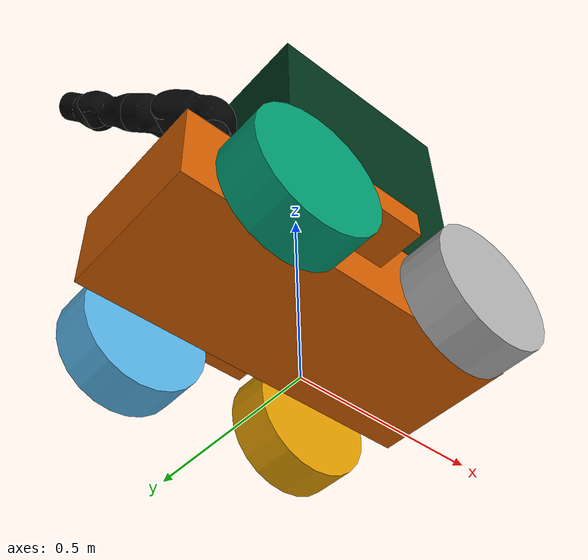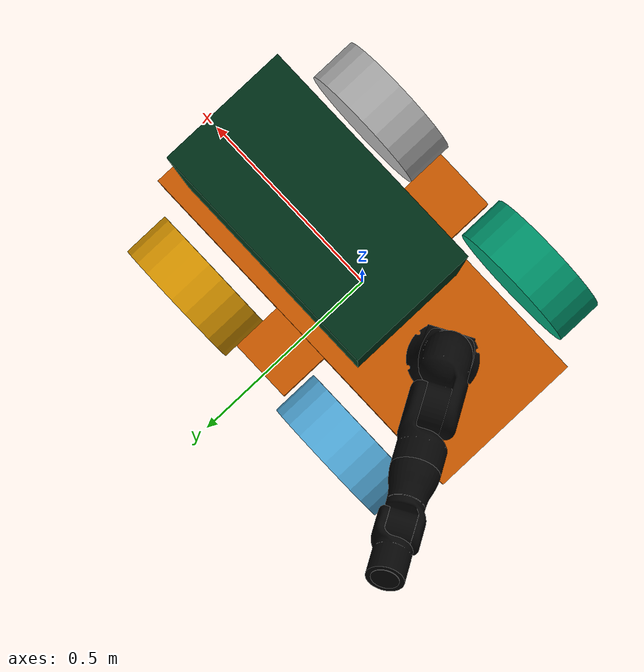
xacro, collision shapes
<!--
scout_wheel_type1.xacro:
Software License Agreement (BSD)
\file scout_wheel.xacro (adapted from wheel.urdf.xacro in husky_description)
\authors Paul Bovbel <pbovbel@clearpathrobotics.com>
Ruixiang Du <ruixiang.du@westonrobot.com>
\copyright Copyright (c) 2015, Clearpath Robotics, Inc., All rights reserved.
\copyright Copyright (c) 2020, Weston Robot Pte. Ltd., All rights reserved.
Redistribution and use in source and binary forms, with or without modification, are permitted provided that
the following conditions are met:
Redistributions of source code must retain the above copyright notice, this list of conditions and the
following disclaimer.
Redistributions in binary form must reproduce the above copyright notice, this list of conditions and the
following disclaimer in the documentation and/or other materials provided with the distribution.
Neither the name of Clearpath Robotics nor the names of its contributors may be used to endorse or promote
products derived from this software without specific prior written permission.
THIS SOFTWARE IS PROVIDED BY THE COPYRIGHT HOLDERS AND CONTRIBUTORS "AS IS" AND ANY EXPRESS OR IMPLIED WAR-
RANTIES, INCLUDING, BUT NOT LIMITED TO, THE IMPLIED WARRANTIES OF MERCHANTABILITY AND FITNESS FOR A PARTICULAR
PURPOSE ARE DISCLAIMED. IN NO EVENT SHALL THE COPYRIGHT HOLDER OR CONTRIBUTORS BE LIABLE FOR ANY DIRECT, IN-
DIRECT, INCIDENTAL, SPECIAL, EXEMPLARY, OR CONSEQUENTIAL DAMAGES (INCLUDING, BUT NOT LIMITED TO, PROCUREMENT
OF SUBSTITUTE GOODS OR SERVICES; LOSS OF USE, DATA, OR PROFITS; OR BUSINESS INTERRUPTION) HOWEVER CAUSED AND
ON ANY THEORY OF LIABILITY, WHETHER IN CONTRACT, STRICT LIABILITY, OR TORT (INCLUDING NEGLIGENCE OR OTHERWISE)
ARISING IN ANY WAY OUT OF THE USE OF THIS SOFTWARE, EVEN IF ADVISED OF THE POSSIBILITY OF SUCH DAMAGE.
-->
<?xml version="1.0"?>
<robot xmlns:xacro="http://www.ros.org/wiki/xacro" name="igus_rebel">

    <!-- Scout base selection -->
    <xacro:arg name="load_base" default="true" />

    <!-- Mount selection -->
    <xacro:arg name="mount" default="none" />

    <!-- Camera type selection -->
    <xacro:arg name="camera" default="none" />

    <!-- End effector type selection -->
    <xacro:arg name="end_effector" default="none" />

    <!-- Gazebo version -->
    <xacro:arg name="load_gazebo" default="false" />

    <!-- Controller settings, only enable a single one in the launch file -->
    <xacro:arg name="hardware_protocol" default="simulation" />

    <!-- Argument that tells if Moveit2 is used or not -->
    <xacro:arg name="moveit" default="false" />

    <!-- odometry source: world ground truth or wheels encoders -->
    <xacro:arg name="odometry_source" default="ground_truth" />

    <!-- Set both at 0.0 if collapsing is not interesting in gazebo -->
    <xacro:property name="damping" value="0.0"/>
    <xacro:property name="friction" value="0.0"/>

    <!-- Load mobile robot base, load_base must be true -->
    <xacro:if value="$(arg load_base)">

        <link name="world" />
        <joint name="world_joint" type="fixed">
            <parent link="world" />
            <child link="base_footprint" />
        </joint>
        <!-- add virtual joints and links to create a complete TF tree supporting both igus rebel
        and mobile robot -->
        <!-- base_footprint -> base_link -> { mobile_robot_base_link, rebel_support ->
        igus_rebel_base_link } -> other links -->

        <!-- virtual joints acting as a link between base_link and igus_rebel_base_link -->
        <joint name="base_link_to_rebel_support" type="fixed">
            <parent link="base_link" />
            <child link="rebel_support" />
            <origin xyz="-0.26 0.0 0.1" rpy="0 0 ${pi}" />
            <dynamics damping="${damping}" friction="${friction}"/>
        </joint>

        <link name="rebel_support" />

        <joint name="rebel_support_to_igus_rebel" type="fixed">
            <parent link="rebel_support" />
            <child link="igus_rebel_base_link" />
            <origin xyz="0.0 0.0 0.0" rpy="0 0 ${-pi/3}" />
            <dynamics damping="${damping}" friction="${friction}"/>
        </joint>

        <!-- castle with tower mounting sensors, batteries, computer and everyhting else, attached
        to mobile_robot_base_link-->
        <xacro:include filename="$(find igus_rebel_description_ros2)/urdf/mobile_robot/castle.xacro" />

        <!-- load scout robot -->
        <xacro:include
            filename="$(find agilex_scout)/urdf/mobile_robot/scout_v2.urdf.xacro" />
        <xacro:scout_v2
            load_gazebo="$(arg load_gazebo)" odometry_source="$(arg odometry_source)" />

    </xacro:if>

    <!-- Add base_link attachment when no mobile robot is loaded -->
    <xacro:unless value="$(arg load_base)">

        <link name="world" />
        <joint name="world_joint" type="fixed">
            <parent link="world" />
            <child link="base_link" />
        </joint>

        <link name="base_link" />

        <joint name="base_link_to_igus_rebel" type="fixed">
            <parent link="base_link" />
            <child link="igus_rebel_base_link" />
            <origin xyz="0.0 0.0 0.0" rpy="0.0 0.0 0.0" />
        </joint>

    </xacro:unless>

    <!-- load igus rebel -->
    <xacro:include
        filename="$(find igus_rebel_description_ros2)/urdf/igus_rebel/igus_rebel.urdf.xacro" />
    <xacro:igus_rebel
            load_base="$(arg load_base)" mount="$(arg mount)" camera="$(arg camera)" end_effector="$(arg end_effector)"
        hardware_protocol="$(arg hardware_protocol)" load_gazebo="$(arg load_gazebo)" moveit="$(arg moveit)" />

</robot>

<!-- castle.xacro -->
<robot name="scout_v2" xmlns:xacro="http://ros.org/wiki/xacro">

	<joint name="tower" type="fixed">
		<parent link="mobile_robot_base_link" />
		<child link="tower_link" />
		<origin rpy="0.0 0.0 0" xyz="0.13 0.0 0.1" />
		<axis xyz="0 0 -1" />
	</joint>

	<link name="tower_link">
		<inertial>
			<mass value="1" />
			<inertia ixx="1" ixy="1" ixz="1" iyy="0" iyz="0" izz="0" />
		</inertial>
		<visual>
			<origin xyz="0.0 0.0 0.33" rpy="0.0 0.0 0.0" />
			<geometry>
				<box size="0.55 0.3 0.69" />
			</geometry>
			<material name="dark_blue">
				<color rgba="0.0 ${51/255} ${25/255} 1.0" />
			</material>
		</visual>
		<collision>
			<origin xyz="0.0 0.0 0.33" rpy="0.0 0.0 0.0" />
			<geometry>
				<box size="0.55 0.3 0.69" />
			</geometry>
		</collision>
	</link>

</robot>

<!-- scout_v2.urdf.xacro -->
<robot name="scout_v2" xmlns:xacro="http://ros.org/wiki/xacro">

	<xacro:macro name="scout_v2" params="odometry_source load_gazebo">

		<!-- Variables -->

		<!-- Collision boxes geometries -->
		<xacro:property name="base_x_size" value="0.9250000" />
		<xacro:property name="base_y_size" value="0.380000" />
		<xacro:property name="base_z_size" value="0.210000" />

		<!-- vehicle geometries -->
		<xacro:property name="wheelbase" value="0.498" />
		<xacro:property name="track" value="0.58306" />
		<xacro:property name="wheel_vertical_offset" value="-0.0702" />

		<xacro:property name="wheel_length" value="1.1653e-01" />
		<xacro:property name="wheel_radius" value="1.6459e-01" />

		<!-- virtual joints to link to ground and to odom -->
		<link name="base_footprint" />

		<joint name="base_footprint_to_base_link" type="fixed">
			<origin xyz="0 0 ${wheel_radius - wheel_vertical_offset}" rpy="0 0 0" />
			<parent link="base_footprint" />
			<child link="base_link" />
		</joint>

		<link name="base_link" />

		<joint name="base_link_to_mobile_robot" type="fixed">
			<origin xyz="0 0 0" rpy="0 0 0" />
			<parent link="base_link" />
			<child link="mobile_robot_base_link" />
		</joint>

		<!-- Base link -->
		<link name="mobile_robot_base_link">
			<visual>
				<origin xyz="0 0 0" rpy="0 0 0" />
				<geometry>
					<mesh
						filename="file://$(find agilex_scout)/meshes/mobile_robot/mobile_robot_base_link.dae" />
				</geometry>
			</visual>
			<collision>
				<origin xyz="0 0 0.008" rpy="0 0 0" />
				<geometry>
					<box size="${base_x_size} ${base_y_size} ${base_z_size}" />
				</geometry>
			</collision>
			<collision>
				<origin xyz="0 0 ${base_z_size/6}" rpy="0 0 0" />
				<geometry>
					<box size="${base_x_size/6} ${base_y_size*1.65} ${base_z_size/3}" />
				</geometry>
			</collision>
		</link>

		<link name="inertial_link">
			<inertial>
				<mass value="50" />
				<origin xyz="0.0 0.0 0.0" />
				<inertia ixx="2.288641" ixy="0" ixz="0" iyy="5.103976" iyz="0" izz="3.431465" />
			</inertial>
		</link>

		<joint name="inertial_joint" type="fixed">
			<origin xyz="0 0 0" rpy="0 0 0" />
			<parent link="mobile_robot_base_link" />
			<child link="inertial_link" />
		</joint>

		<!-- Scout wheel macros -->
		<xacro:include filename="$(find agilex_scout)/urdf/mobile_robot/scout_wheel_type1.xacro" />
		<xacro:include filename="$(find agilex_scout)/urdf/mobile_robot/scout_wheel_type2.xacro" />
		<!-- wheel labeled from 0 to 3, conter-clockwise, starting from front right wheel -->
		<!-- motor 1 and 2 (left side) are mechanically installed in a reversed direction -->
		<xacro:scout_wheel_type1 wheel_prefix="front_right" x="${wheelbase/2}" y="${-track/2}"
			z="${wheel_vertical_offset}" phi="0" />

		<xacro:scout_wheel_type2 wheel_prefix="front_left" x="${wheelbase/2}" y="${track/2}"
			z="${wheel_vertical_offset}" phi="0" />

		<xacro:scout_wheel_type1 wheel_prefix="rear_left" x="${-wheelbase/2}" y="${track/2}"
			z="${wheel_vertical_offset}" phi="0" />

		<xacro:scout_wheel_type2 wheel_prefix="rear_right" x="${-wheelbase/2}" y="${-track/2}"
			z="${wheel_vertical_offset}" phi="0" />

		<link name="front_mount" />

		<joint name="front_mount_joint" type="fixed">
			<origin xyz="0.325 0.0 0.112701" rpy="0 0 0" />
			<parent link="mobile_robot_base_link" />
			<child link="front_mount" />
		</joint>

		<link name="rear_mount" />

		<joint name="rear_mount_joint" type="fixed">
			<origin xyz="-0.325 0.0 0.112701" rpy="0 0 0" />
			<parent link="mobile_robot_base_link" />
			<child link="rear_mount" />
		</joint>

		<!-- Gazebo definitions  -->
		<xacro:if value="${load_gazebo}">
			<xacro:include filename="$(find agilex_scout)/urdf/mobile_robot/scout_v2.gazebo" />
		</xacro:if>

	</xacro:macro>

</robot>

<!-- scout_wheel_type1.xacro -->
<robot xmlns:xacro="http://ros.org/wiki/xacro" name="scout_v2">

	<xacro:macro name="scout_wheel_type1" params="wheel_prefix x y z phi">

		<link name="${wheel_prefix}_wheel_link">
			<inertial>
				<mass value="8" />
				<origin xyz="0 0 0" />
				<inertia ixx="0.1171" ixy="0" ixz="0" iyy="0.1361" iyz="0" izz="0.1171" />
			</inertial>
			<visual>
				<origin xyz="0 0 0" rpy="0 0 0" />
				<geometry>
					<mesh filename="file://$(find agilex_scout)/meshes/mobile_robot/wheel_type1.dae" />
				</geometry>
			</visual>
			<collision>
				<origin xyz="0 0 0" rpy="${pi/2} 0 0" />
				<geometry>
					<cylinder length="${wheel_length}" radius="${wheel_radius}" />
				</geometry>
				<surface>
					<contact>
						<ode>
							<min_depth>0.001</min_depth>
							<kp>1000000000.0</kp>
							<kd>0.0</kd>
						</ode>
					</contact>
					<friction>
						<ode>
							<mu>0.9</mu>
							<mu2>0.7</mu2>
							<fdir1>1 0 0</fdir1>
						</ode>
					</friction>
				</surface>
			</collision>
		</link>

		<!-- if gazebo is loaded, simulate the robot wheel rotations and broadcast the join states-->
		<xacro:if value="$(arg load_gazebo)">
			<joint name="${wheel_prefix}_wheel" type="continuous">
				<parent link="mobile_robot_base_link" />
				<child link="${wheel_prefix}_wheel_link" />
				<origin xyz="${x} ${y} ${z}" rpy="${phi} 0.0 0.0" />
				<axis xyz="0 1 0" rpy="0 0 0" />
				<dynamics damping="0.0" friction="20" />
			</joint>
		</xacro:if>

		<!-- if real robot is loaded, fixed wheels are used because no joint broadcasters are available -->
		<xacro:unless value="$(arg load_gazebo)">
			<joint name="${wheel_prefix}_wheel" type="fixed">
				<parent link="mobile_robot_base_link" />
				<child link="${wheel_prefix}_wheel_link" />
				<origin xyz="${x} ${y} ${z}" rpy="${phi} 0.0 0.0" />
				<axis xyz="0 1 0" rpy="0 0 0" />
			</joint>
		</xacro:unless>

	</xacro:macro>

</robot>

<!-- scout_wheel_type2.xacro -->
<robot xmlns:xacro="http://ros.org/wiki/xacro" name="scout_v2">

	<xacro:macro name="scout_wheel_type2" params="wheel_prefix x y z phi">

		<link name="${wheel_prefix}_wheel_link">
			<inertial>
				<mass value="8" />
				<origin xyz="0 0 0" />
				<inertia ixx="0.1171" ixy="0" ixz="0" iyy="0.1361" iyz="0" izz="0.1171" />
			</inertial>
			<visual>
				<origin xyz="0 0 0" rpy="0 0 0" />
				<geometry>
					<mesh filename="file://$(find agilex_scout)/meshes/mobile_robot/wheel_type2.dae" />
				</geometry>
			</visual>
			<collision>
				<origin xyz="0 0 0" rpy="${pi/2} 0 0" />
				<geometry>
					<cylinder length="${wheel_length}" radius="${wheel_radius}" />
				</geometry>
				<surface>
					<contact>
						<ode>
							<min_depth>0.001</min_depth>
							<kp>1000000000.0</kp>
							<kd>0.0</kd>
						</ode>
					</contact>
					<friction>
						<ode>
							<mu>0.9</mu>
							<mu2>0.7</mu2>
							<fdir1>1 0 0</fdir1>
						</ode>
					</friction>
				</surface>
			</collision>
		</link>

		<!-- if gazebo is loaded, simulate the robot wheel rotations and broadcast the join states-->
		<xacro:if value="$(arg load_gazebo)">
			<joint name="${wheel_prefix}_wheel" type="continuous">
				<parent link="mobile_robot_base_link" />
				<child link="${wheel_prefix}_wheel_link" />
				<origin xyz="${x} ${y} ${z}" rpy="${phi} 0.0 0.0" />
				<axis xyz="0 1 0" rpy="0 0 0" />
				<dynamics damping="0.0" friction="20" />
			</joint>
		</xacro:if>

		<!-- if real robot is loaded, fixed wheels are used because no joint broadcasters are available -->
		<xacro:unless value="$(arg load_gazebo)">
			<joint name="${wheel_prefix}_wheel" type="fixed">
				<parent link="mobile_robot_base_link" />
				<child link="${wheel_prefix}_wheel_link" />
				<origin xyz="${x} ${y} ${z}" rpy="${phi} 0.0 0.0" />
				<axis xyz="0 1 0" rpy="0 0 0" />
			</joint>
		</xacro:unless>

	</xacro:macro>

</robot>

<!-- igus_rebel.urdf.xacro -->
<robot xmlns:xacro="http://www.ros.org/wiki/xacro" name="igus_rebel">

    <!-- macro definition for the robot -->
    <xacro:macro name="igus_rebel" params="load_base mount camera end_effector hardware_protocol load_gazebo moveit">

        <!-- Include and call rebel macro -->
        <xacro:include filename="$(find igus_rebel_description_ros2)/urdf/igus_rebel/igus_rebel.description.xacro" />
        <xacro:igus_rebel_description />

        <!-- Controller macro -->
        <xacro:include filename="$(find igus_rebel_description_ros2)/urdf/igus_rebel/igus_rebel.control.xacro" />
        <xacro:igus_rebel_control hardware_protocol="${hardware_protocol}" />

        <!-- Mount macro -->
        <xacro:if value="${mount == 'mount_v1'}">

            <xacro:include filename="$(find igus_rebel_description_ros2)/urdf/mounts/mount_v1.xacro"/>
            <xacro:mount_v1 camera="$(arg camera)" end_effector="$(arg end_effector)" load_gazebo="$(arg load_gazebo)"/>

        </xacro:if>

        <!-- Gazebo macro -->
        <xacro:if value="${load_gazebo}">

            <xacro:include filename="$(find igus_rebel_description_ros2)/urdf/igus_rebel/igus_rebel.gazebo.xacro" />

            <xacro:if value="${moveit}">
                <xacro:ign_ros2_control controller_parameters="$(find igus_rebel_moveit_config)/config/ros2_controllers.yaml"/>
            </xacro:if>

            <xacro:unless value="${moveit}">
                <xacro:ign_joint_state_publisher/>
                <xacro:ign_joint_position_controller/>
            </xacro:unless>

            <xacro:unless value="${camera == 'none' or mount == 'none'}">
                <xacro:virtual_sensors/>

                <xacro:unless value="${load_base}">

                    <xacro:ign_sensor_plugin/>

                </xacro:unless>

            </xacro:unless>

        </xacro:if>

    </xacro:macro>

</robot>

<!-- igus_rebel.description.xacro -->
<robot xmlns:xacro="http://www.ros.org/wiki/xacro" name="igus_rebel">

    <material name="dark_grey">
        <color rgba="${5/255.0} ${5/255.0} ${5/255.0} 1.000" />
    </material>

    <xacro:macro name="igus_rebel_description">

        <!-- Set both at 0.0 if collapsing is not interesting in gazebo -->
        <xacro:property name="damping" value="0.0"/>
        <xacro:property name="friction" value="0.0"/>

        <link name="igus_rebel_base_link">
            <visual>
                <geometry>
                    <mesh filename="file://$(find igus_rebel_description_ros2)/meshes/igus_rebel/Joint0.dae" />
                </geometry>
                <material name="dark_grey"/>
            </visual>
            <collision>
                <geometry>
                    <mesh filename="file://$(find igus_rebel_description_ros2)/meshes/igus_rebel/Joint0.dae" />
                </geometry>
            </collision>
            <inertial>
                <mass value="1.0" />
                <inertia ixx="1.0" ixy="0.0" ixz="0.0" iyy="1.0" iyz="0.0" izz="1.0" />
            </inertial>
        </link>

        <joint name="joint1" type="revolute">
            <parent link="igus_rebel_base_link" />
            <child link="link_1" />
            <origin rpy="0.0 0.0 0.0" xyz="0.0 0 0.100" />
            <axis xyz="0 0 1" />
            <limit effort="330.0" lower="${-pi*179/180}" upper="${pi*179/180}" velocity="${pi*45/180}" />
            <dynamics damping="${damping}" friction="${friction}"/>
        </joint>

        <link name="link_1">
            <visual>
                <geometry>
                    <mesh filename="file://$(find igus_rebel_description_ros2)/meshes/igus_rebel/Joint1.dae" />
                </geometry>
                <origin rpy="0 0 0" xyz="0 0 0" />
                <material name="dark_grey"/>
            </visual>
            <collision>
                <geometry>
                    <mesh filename="file://$(find igus_rebel_description_ros2)/meshes/igus_rebel/Joint1.dae" />
                </geometry>
                <origin rpy="0 0 0" xyz="0 0 0" />
            </collision>
            <inertial>
                <mass value="0.1" />
                <inertia ixx="0.03" ixy="0.0" ixz="0.0" iyy="0.03" iyz="0.0" izz="0.03" />
            </inertial>
        </link>

        <joint name="joint2" type="revolute">
            <parent link="link_1" />
            <child link="link_2" />
            <origin rpy="0.0 ${pi/6} 0.0" xyz="0.0 0 0.149" />
            <axis xyz="0 1 0" />
            <!-- pi*2/3 are the physical limits, but to avoid any collisions we set the actual limits lower -->
            <limit effort="330.0" lower="${-pi*11/18}" upper="${pi*11/18}" velocity="${pi*45/180}" />
            <dynamics damping="${damping}" friction="${friction}"/>
        </joint>

        <link name="link_2">
            <visual>
                <geometry>
                    <mesh filename="file://$(find igus_rebel_description_ros2)/meshes/igus_rebel/Joint2.dae" />
                </geometry>
                <origin rpy="0 0 0" xyz="0 0 0" />
                <material name="dark_grey"/>
            </visual>
            <collision>
                <geometry>
                    <mesh filename="file://$(find igus_rebel_description_ros2)/meshes/igus_rebel/Joint2.dae" />
                </geometry>
                <origin rpy="0 0 0" xyz="0 0 0" />
            </collision>
            <inertial>
                <mass value="0.1" />
                <inertia ixx="0.03" ixy="0.0" ixz="0.0" iyy="0.03" iyz="0.0" izz="0.03" />
            </inertial>
        </link>

        <joint name="joint3" type="revolute">
            <parent link="link_2" />
            <child link="link_5" />
            <origin rpy="0.0 ${pi/6} 0.0" xyz="0.0 0.0 0.2384" />
            <axis xyz="0 1 0" />
            <!-- pi*2/3 are the physical limits, but to avoid any collisions we set the actual limits lower -->
            <limit effort="330.0" lower="${-pi*11/18}" upper="${pi*11/18}" velocity="${pi*45/180}" />
            <dynamics damping="${damping}" friction="${friction}"/>
        </joint>

        <link name="link_5">
            <visual>
                <geometry>
                    <mesh filename="file://$(find igus_rebel_description_ros2)/meshes/igus_rebel/Joint3.dae" />
                </geometry>
                <origin rpy="0 0 0" xyz="0 0 0" />
                <material name="dark_grey"/>
            </visual>
            <collision>
                <geometry>
                    <mesh filename="file://$(find igus_rebel_description_ros2)/meshes/igus_rebel/Joint3.dae" />
                </geometry>
                <origin rpy="0 0 0" xyz="0 0 0" />
            </collision>
            <inertial>
                <mass value="0.1" />
                <inertia ixx="0.03" ixy="0.0" ixz="0.0" iyy="0.03" iyz="0.0" izz="0.03" />
            </inertial>
        </link>

        <joint name="joint4" type="revolute">
            <parent link="link_5" />
            <child link="link_6" />
            <!-- TODO The 0.03m offset are most likely caused by the mesh file (Issue 15)-->
            <origin rpy="0.0 0.0 0.0" xyz="0.0 0 ${0.149 - 0.03}" />
            <axis xyz="0 0 1" />
            <limit effort="330.0" lower="${-pi*179/180}" upper="${pi*179/180}" velocity="${pi*45/180}" />
            <dynamics damping="${damping}" friction="${friction}"/>
        </joint>

        <link name="link_6">
            <visual>
                <geometry>
                    <mesh filename="file://$(find igus_rebel_description_ros2)/meshes/igus_rebel/Joint4.dae" />
                </geometry>
                <origin rpy="0 0 0" xyz="0 0 0" />
                <material name="dark_grey"/>
            </visual>
            <collision>
                <geometry>
                    <mesh filename="file://$(find igus_rebel_description_ros2)/meshes/igus_rebel/Joint4.dae" />
                </geometry>
                <origin rpy="0 0 0" xyz="0 0 0" />
            </collision>
            <inertial>
                <mass value="0.1" />
                <inertia ixx="0.03" ixy="0.0" ixz="0.0" iyy="0.03" iyz="0.0" izz="0.03" />
            </inertial>
        </link>

        <joint name="joint5" type="revolute">
            <parent link="link_6" />
            <child link="link_7" />
            <!-- TODO The 0.03m offset are most likely caused by the mesh file (Issue 15) -->
            <origin rpy="0.0 ${-pi/24} 0.0" xyz="0.0 0 ${0.14 + 0.03}" />
            <axis xyz="0 1 0" />
            <limit effort="330.0" lower="${-pi*19/36 + pi/24}" upper="${pi*19/36 + pi/24}" velocity="${pi*45/180}" />
            <dynamics damping="${damping}" friction="${friction}"/>
        </joint>

        <link name="link_7">
            <visual>
                <geometry>
                    <mesh filename="file://$(find igus_rebel_description_ros2)/meshes/igus_rebel/Joint5.dae" />
                </geometry>
                <origin rpy="0 0 0" xyz="0 0 0" />
                <material name="dark_grey"/>
            </visual>
            <collision>
                <geometry>
                    <mesh filename="file://$(find igus_rebel_description_ros2)/meshes/igus_rebel/Joint5.dae" />
                </geometry>
                <origin rpy="0 0 0" xyz="0 0 0" />
            </collision>
            <inertial>
                <mass value="0.1" />
                <inertia ixx="0.03" ixy="0.0" ixz="0.0" iyy="0.03" iyz="0.0" izz="0.03" />
            </inertial>
        </link>

        <joint name="joint6" type="revolute">
            <parent link="link_7" />
            <child link="link_8" />
            <origin rpy="0.0 0.0 0.0" xyz="0.0 0 0.1208" />
            <axis xyz="0 0 1" />
            <limit effort="330.0" lower="${-pi*179/180}" upper="${pi*179/180}" velocity="${pi*45/180}" />
            <dynamics damping="${damping}" friction="${friction}"/>
        </joint>

        <link name="link_8">
            <visual>
                <geometry>
                    <mesh filename="file://$(find igus_rebel_description_ros2)/meshes/igus_rebel/Joint6.dae" />
                </geometry>
                <origin rpy="0 0 0" xyz="0.0 0 0" />
                <material name="dark_grey"/>
            </visual>
            <collision>
                <geometry>
                    <mesh filename="file://$(find igus_rebel_description_ros2)/meshes/igus_rebel/Joint6.dae" />
                </geometry>
                <origin rpy="0 0 0" xyz="0.0 0 0" />
            </collision>
            <inertial>
                <mass value="0.1" />
                <inertia ixx="0.03" ixy="0.0" ixz="0.0" iyy="0.03" iyz="0.0" izz="0.03" />
            </inertial>
        </link>

        <joint name="joint7" type="fixed">
            <parent link="link_8" />
            <child link="flange" />
            <origin rpy="0.0 ${-pi/2} 0.0" xyz="0.0 0 0.0012" />
            <axis xyz="0 0 0" />
            <dynamics damping="${damping}" friction="${friction}"/>
        </joint>

        <link name="flange"></link>

    </xacro:macro>
</robot>
